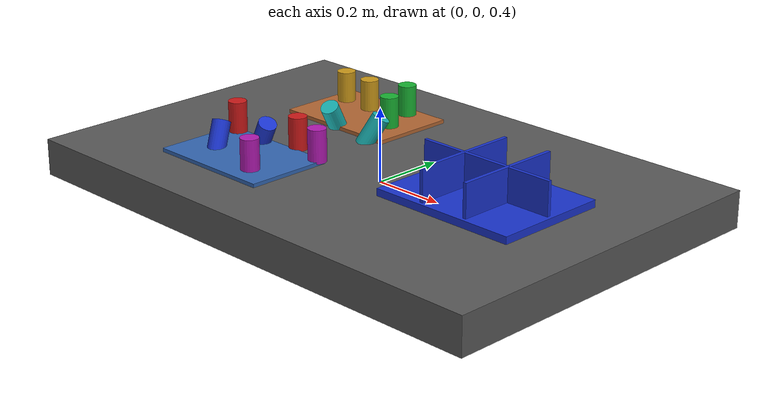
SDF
<?xml version="1.0" ?>
<sdf version="1.9">
  <!-- Standalone M1B scene.  The controller-backed Panda is spawned by the
       existing launch path; this file never alters the frozen M1A cube world. -->
  <world name="industrial_cylinder_v1">
    <physics name="bullet" type="bullet"><max_step_size>0.001</max_step_size><real_time_factor>1.0</real_time_factor></physics>
    <plugin name="gz::sim::systems::Physics" filename="gz-sim-physics-system"><engine><filename>gz-physics-bullet-featherstone-plugin</filename></engine></plugin>
    <plugin name="gz::sim::systems::UserCommands" filename="gz-sim-user-commands-system"/>
    <plugin name="gz::sim::systems::SceneBroadcaster" filename="gz-sim-scene-broadcaster-system"/>
    <plugin name="gz::sim::systems::Sensors" filename="gz-sim-sensors-system"><render_engine>ogre2</render_engine></plugin>
    <gravity>0 0 -9.81</gravity>
    <light type="directional" name="industrial_light"><pose>0 0 5 0 0 0</pose><direction>-0.3 0.2 -0.9</direction><diffuse>0.9 0.9 0.9 1</diffuse></light>
    <model name="industrial_work_table"><static>true</static><link name="link"><pose>0 0 0.4 0 0 0</pose><collision name="collision"><geometry><box><size>1.5 1.0 0.1</size></box></geometry></collision><visual name="visual"><geometry><box><size>1.5 1.0 0.1</size></box></geometry><material><diffuse>0.35 0.35 0.35 1</diffuse></material></visual></link></model>
    <model name="camera_fixture"><static>true</static><link name="camera_rgbd"><pose>-0.80 -0.80 1.40 0 0.77 0.93</pose><sensor name="front_rgbd" type="rgbd_camera"><always_on>1</always_on><update_rate>15</update_rate><topic>/xh/camera/rgbd</topic><camera><horizontal_fov>1.047</horizontal_fov><image><width>640</width><height>480</height><format>R8G8B8</format></image><clip><near>0.1</near><far>4.0</far></clip></camera></sensor></link></model>
    <model name="incoming_zone_a"><static>true</static><link name="link"><pose>-0.28 -0.22 0.455 0 0 0</pose><visual name="visual"><geometry><box><size>0.36 0.24 0.01</size></box></geometry><material><diffuse>0.2 0.4 0.7 1</diffuse></material></visual></link></model>
    <model name="incoming_zone_b"><static>true</static><link name="link"><pose>-0.28 0.22 0.455 0 0 0</pose><visual name="visual"><geometry><box><size>0.36 0.24 0.01</size></box></geometry><material><diffuse>0.7 0.4 0.2 1</diffuse></material></visual></link></model>
    <!-- M1B_RANDOM_PARTS_BEGIN -->
    <model name="cylinder_01"><pose>-0.4237 -0.1145 0.5000 0.0000 0.0000 -1.1108</pose><link name="link"><inertial><mass>0.06</mass></inertial><collision name="collision"><geometry><cylinder><radius>0.025</radius><length>0.09</length></cylinder></geometry></collision><visual name="visual"><geometry><cylinder><radius>0.025</radius><length>0.09</length></cylinder></geometry><material><diffuse>0.800 0.100 0.100 1</diffuse><specular>0.15 0.15 0.15 1</specular></material></visual></link></model>
    <model name="cylinder_02"><pose>-0.1684 0.1995 0.5000 3.1416 0.0000 -0.3448</pose><link name="link"><inertial><mass>0.06</mass></inertial><collision name="collision"><geometry><cylinder><radius>0.025</radius><length>0.09</length></cylinder></geometry></collision><visual name="visual"><geometry><cylinder><radius>0.025</radius><length>0.09</length></cylinder></geometry><material><diffuse>0.100 0.700 0.200 1</diffuse><specular>0.15 0.15 0.15 1</specular></material></visual></link></model>
    <model name="cylinder_03"><pose>-0.3093 -0.1242 0.4800 0.4500 -0.3000 1.9293</pose><link name="link"><inertial><mass>0.06</mass></inertial><collision name="collision"><geometry><cylinder><radius>0.025</radius><length>0.09</length></cylinder></geometry></collision><visual name="visual"><geometry><cylinder><radius>0.025</radius><length>0.09</length></cylinder></geometry><material><diffuse>0.100 0.200 0.800 1</diffuse><specular>0.15 0.15 0.15 1</specular></material></visual></link></model>
    <model name="cylinder_04"><pose>-0.3083 0.2626 0.5000 0.0000 0.0000 -2.5383</pose><link name="link"><inertial><mass>0.06</mass></inertial><collision name="collision"><geometry><cylinder><radius>0.025</radius><length>0.09</length></cylinder></geometry></collision><visual name="visual"><geometry><cylinder><radius>0.025</radius><length>0.09</length></cylinder></geometry><material><diffuse>0.800 0.600 0.100 1</diffuse><specular>0.15 0.15 0.15 1</specular></material></visual></link></model>
    <model name="cylinder_05"><pose>-0.1842 -0.2778 0.5000 3.1416 0.0000 -0.6941</pose><link name="link"><inertial><mass>0.06</mass></inertial><collision name="collision"><geometry><cylinder><radius>0.025</radius><length>0.09</length></cylinder></geometry></collision><visual name="visual"><geometry><cylinder><radius>0.025</radius><length>0.09</length></cylinder></geometry><material><diffuse>0.700 0.100 0.700 1</diffuse><specular>0.15 0.15 0.15 1</specular></material></visual></link></model>
    <model name="cylinder_06"><pose>-0.1317 0.1003 0.4800 0.4500 -0.3000 2.8755</pose><link name="link"><inertial><mass>0.06</mass></inertial><collision name="collision"><geometry><cylinder><radius>0.025</radius><length>0.09</length></cylinder></geometry></collision><visual name="visual"><geometry><cylinder><radius>0.025</radius><length>0.09</length></cylinder></geometry><material><diffuse>0.100 0.700 0.700 1</diffuse><specular>0.15 0.15 0.15 1</specular></material></visual></link></model>
    <model name="cylinder_07"><pose>-0.2200 -0.0834 0.5000 0.0000 0.0000 -2.4982</pose><link name="link"><inertial><mass>0.06</mass></inertial><collision name="collision"><geometry><cylinder><radius>0.025</radius><length>0.09</length></cylinder></geometry></collision><visual name="visual"><geometry><cylinder><radius>0.025</radius><length>0.09</length></cylinder></geometry><material><diffuse>0.800 0.100 0.100 1</diffuse><specular>0.15 0.15 0.15 1</specular></material></visual></link></model>
    <model name="cylinder_08"><pose>-0.2025 0.3023 0.5000 3.1416 0.0000 -3.1202</pose><link name="link"><inertial><mass>0.06</mass></inertial><collision name="collision"><geometry><cylinder><radius>0.025</radius><length>0.09</length></cylinder></geometry></collision><visual name="visual"><geometry><cylinder><radius>0.025</radius><length>0.09</length></cylinder></geometry><material><diffuse>0.100 0.700 0.200 1</diffuse><specular>0.15 0.15 0.15 1</specular></material></visual></link></model>
    <model name="cylinder_09"><pose>-0.3773 -0.2205 0.4800 0.4500 -0.3000 -2.1295</pose><link name="link"><inertial><mass>0.06</mass></inertial><collision name="collision"><geometry><cylinder><radius>0.025</radius><length>0.09</length></cylinder></geometry></collision><visual name="visual"><geometry><cylinder><radius>0.025</radius><length>0.09</length></cylinder></geometry><material><diffuse>0.100 0.200 0.800 1</diffuse><specular>0.15 0.15 0.15 1</specular></material></visual></link></model>
    <model name="cylinder_10"><pose>-0.4079 0.2693 0.5000 0.0000 0.0000 2.2864</pose><link name="link"><inertial><mass>0.06</mass></inertial><collision name="collision"><geometry><cylinder><radius>0.025</radius><length>0.09</length></cylinder></geometry></collision><visual name="visual"><geometry><cylinder><radius>0.025</radius><length>0.09</length></cylinder></geometry><material><diffuse>0.800 0.600 0.100 1</diffuse><specular>0.15 0.15 0.15 1</specular></material></visual></link></model>
    <model name="cylinder_11"><pose>-0.1173 -0.1102 0.5000 3.1416 0.0000 -2.9257</pose><link name="link"><inertial><mass>0.06</mass></inertial><collision name="collision"><geometry><cylinder><radius>0.025</radius><length>0.09</length></cylinder></geometry></collision><visual name="visual"><geometry><cylinder><radius>0.025</radius><length>0.09</length></cylinder></geometry><material><diffuse>0.700 0.100 0.700 1</diffuse><specular>0.15 0.15 0.15 1</specular></material></visual></link></model>
    <model name="cylinder_12"><pose>-0.2766 0.0989 0.4800 0.4500 -0.3000 0.7643</pose><link name="link"><inertial><mass>0.06</mass></inertial><collision name="collision"><geometry><cylinder><radius>0.025</radius><length>0.09</length></cylinder></geometry></collision><visual name="visual"><geometry><cylinder><radius>0.025</radius><length>0.09</length></cylinder></geometry><material><diffuse>0.100 0.700 0.700 1</diffuse><specular>0.15 0.15 0.15 1</specular></material></visual></link></model>
    <!-- M1B_RANDOM_PARTS_END -->
    <model name="blue_partition_bin"><static>true</static><pose>0.36 0 0.45 0 0 0</pose><link name="link"><collision name="floor"><pose>0 0 0.01 0 0 0</pose><geometry><box><size>0.42 0.32 0.02</size></box></geometry></collision><visual name="floor_visual"><pose>0 0 0.01 0 0 0</pose><geometry><box><size>0.42 0.32 0.02</size></box></geometry><material><diffuse>0.1 0.2 0.8 1</diffuse></material></visual><visual name="row_divider"><pose>0 0 0.06 0 0 0</pose><geometry><box><size>0.40 0.01 0.10</size></box></geometry><material><diffuse>0.1 0.2 0.8 1</diffuse></material></visual><visual name="col_divider_a"><pose>-0.07 0 0.06 0 0 0</pose><geometry><box><size>0.01 0.30 0.10</size></box></geometry><material><diffuse>0.1 0.2 0.8 1</diffuse></material></visual><visual name="col_divider_b"><pose>0.07 0 0.06 0 0 0</pose><geometry><box><size>0.01 0.30 0.10</size></box></geometry><material><diffuse>0.1 0.2 0.8 1</diffuse></material></visual></link></model>
    <!-- Reserved only: second table, bin transport corridor, stackable-bin
         collision volume, and second arm mounting namespace. -->
  </world>
</sdf>
